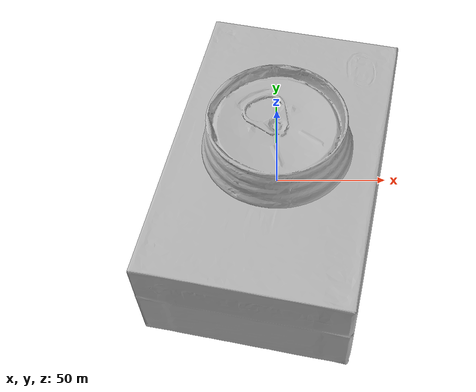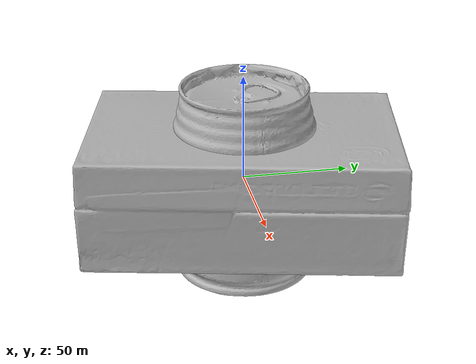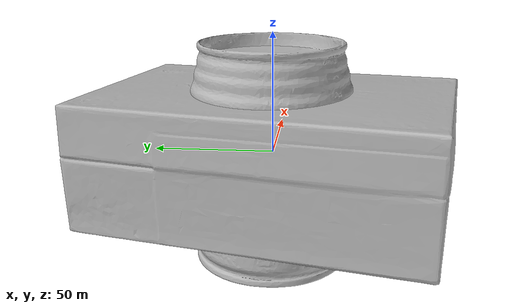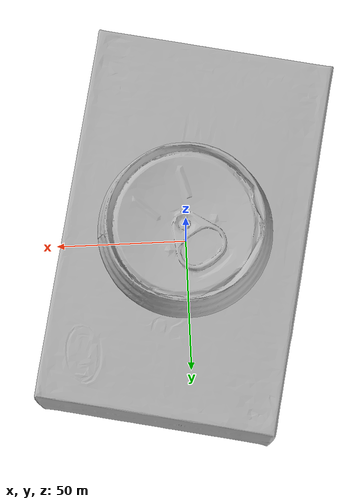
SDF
<sdf version="1.4">
 <world name="default">
  <light name="light1" type="point">
   <pose>0 0 1 0 0 0</pose>
   <diffuse>3 3 3 1</diffuse>
   <specular>3 3 3 1</specular>
  </light>
  <light name="light2" type="point">
   <pose>0 0.5 2 0 0 0</pose>
   <diffuse>1 1 1 1</diffuse>
   <specular>1 1 1 1</specular>
  </light>
  <light name="light3" type="point">
   <pose>0 0.5 2 0 0 0</pose>
   <diffuse>3 3 3 1</diffuse>
   <specular>3 3 3 1</specular>
  </light>
  <scene><ambient>0.7 0.7 0.7</ambient></scene>
  <model name="box1">
   <link name="link_box1">
    <collision name="default">
     <geometry>
      <mesh><uri>model://realsense_box/collision_meshes/collision.obj</uri><scale>1.0 1.0 1.0</scale></mesh>
     </geometry>
     <surface>
      <friction><ode><mu>0.5</mu><mu2>0.5</mu2></ode></friction>
      <contact><ode><max_vel>0</max_vel><min_depth>0.0001</min_depth><kp>1e8</kp></ode></contact>
     </surface>
    </collision>
    <visual name="default">
     <geometry>
      <mesh><uri>model://realsense_box/visual_meshes/visual.dae</uri><scale>1.0 1.0 1.0</scale></mesh>
     </geometry>
    </visual>
    <inertial>
     <mass>0.9783616662025452</mass>
     <pose>4.0744838770478964e-05 8.587493357481435e-05 -2.4153794583980925e-05 -0.00012602841694551038 -0.006358939977979225 0.005012324824875736</pose>
     <inertia>
      <ixx>0.0009306729</ixx>
      <iyy>0.0019425071</iyy>
      <izz>0.002403061</izz>
      <ixy>0</ixy>
      <ixz>0</ixz>
      <iyz>0</iyz>
     </inertia>
    </inertial>
   </link>
   <pose>0.08881834894418716 -0.13035766780376434 0.027316005900502205 -2.904250020507813e-08 2.393737196566754e-08 -1.787668862056034</pose>
  </model>
  <model name="box2">
   <link name="link_box2">
    <collision name="default">
     <geometry>
      <mesh><uri>model://wooden_puzzle2/collision_meshes/collision.obj</uri><scale>1.0 1.0 1.0</scale></mesh>
     </geometry>
     <surface>
      <friction><ode><mu>0.5</mu><mu2>0.5</mu2></ode></friction>
      <contact><ode><max_vel>0</max_vel><min_depth>0.0001</min_depth><kp>1e8</kp></ode></contact>
     </surface>
    </collision>
    <visual name="default">
     <geometry>
      <mesh><uri>model://wooden_puzzle2/visual_meshes/visual.dae</uri><scale>1.0 1.0 1.0</scale></mesh>
     </geometry>
    </visual>
    <inertial>
     <mass>0.024048319086432457</mass>
     <pose>2.7402536943554878e-05 4.997663199901581e-05 6.587122334167361e-05 -0.19203048535200862 0.6112800928970119 -0.6338660341545117</pose>
     <inertia>
      <ixx>4.470326e-06</ixx>
      <iyy>4.593511e-06</iyy>
      <izz>4.528165e-06</izz>
      <ixy>0</ixy>
      <ixz>0</ixz>
      <iyz>0</iyz>
     </inertia>
    </inertial>
   </link>
   <pose>0.13929635286331177 -0.3712694048881531 0.01691773533821106 0.020848644540058796 0.0007209442419746605 1.6223095803198821</pose>
  </model>
  <model name="can1">
   <link name="link_can1">
    <collision name="default">
     <geometry>
      <mesh><uri>model://redbull/collision_meshes/collision.obj</uri><scale>1.0 1.0 1.0</scale></mesh>
     </geometry>
     <surface>
      <friction><ode><mu>0.5</mu><mu2>0.5</mu2></ode></friction>
      <contact><ode><max_vel>0</max_vel><min_depth>0.0001</min_depth><kp>1e8</kp></ode></contact>
     </surface>
    </collision>
    <visual name="default">
     <geometry>
      <mesh><uri>model://redbull/visual_meshes/visual.dae</uri><scale>1.0 1.0 1.0</scale></mesh>
     </geometry>
    </visual>
    <inertial>
     <mass>0.19214749336242676</mass>
     <pose>-2.212707477156073e-05 -0.00012659536150749773 -0.0006860988214612007 0.0011364686928787662 -0.01080099531045839 0.5859333437288349</pose>
     <inertia>
      <ixx>0.00018066002</ixx>
      <iyy>0.0001808125</iyy>
      <izz>0.0001072083</izz>
      <ixy>0</ixy>
      <ixz>0</ixz>
      <iyz>0</iyz>
     </inertia>
    </inertial>
   </link>
   <pose>0.14650443196296692 0.25438830256462097 0.046385232359170914 -0.010469295339259582 0.007271839247245566 -2.166916892835745</pose>
  </model>
  <model name="can2">
   <link name="link_can2">
    <collision name="default">
     <geometry>
      <mesh><uri>model://pepsi/collision_meshes/collision.obj</uri><scale>1.0 1.0 1.0</scale></mesh>
     </geometry>
     <surface>
      <friction><ode><mu>0.5</mu><mu2>0.5</mu2></ode></friction>
      <contact><ode><max_vel>0</max_vel><min_depth>0.0001</min_depth><kp>1e8</kp></ode></contact>
     </surface>
    </collision>
    <visual name="default">
     <geometry><mesh><uri>model://pepsi/visual_meshes/visual.dae</uri><scale>1.0 1.0 1.0</scale></mesh></geometry>
    </visual>
    <inertial>
     <mass>0.3079187572002411</mass>
     <pose>-7.5590331107378e-05 2.9931279641459696e-05 -0.0003384356386959553 -0.0010678548810066889 -0.0021735327588889423 0.5674125845328797</pose>
     <inertia>
      <ixx>0.0006134332</ixx>
      <iyy>0.0006129863</iyy>
      <izz>0.0001305606</izz>
      <ixy>0</ixy>
      <ixz>0</ixz>
      <iyz>0</iyz>
     </inertia>
    </inertial>
   </link>
   <pose>-0.034576352685689926 -0.026634274050593376 0.07449633628129959 -1.856981551596495e-05 2.025800065888225e-06 -0.5483900515866318</pose>
  </model>
  <physics type="ode">
   <max_contacts>50</max_contacts>
   <ode>
    <solver><type>quick</type><iters>75</iters></solver>
    <constraints>
     <contact_max_correcting_vel>0</contact_max_correcting_vel>
     <contact_surface_layer>0</contact_surface_layer>
    </constraints>
   </ode>
  </physics>
 </world>
</sdf>
